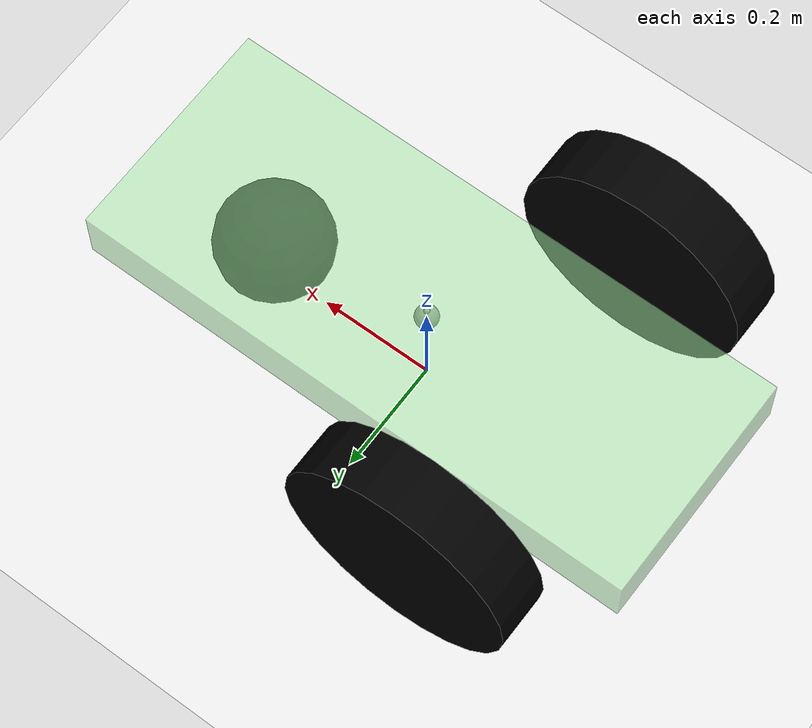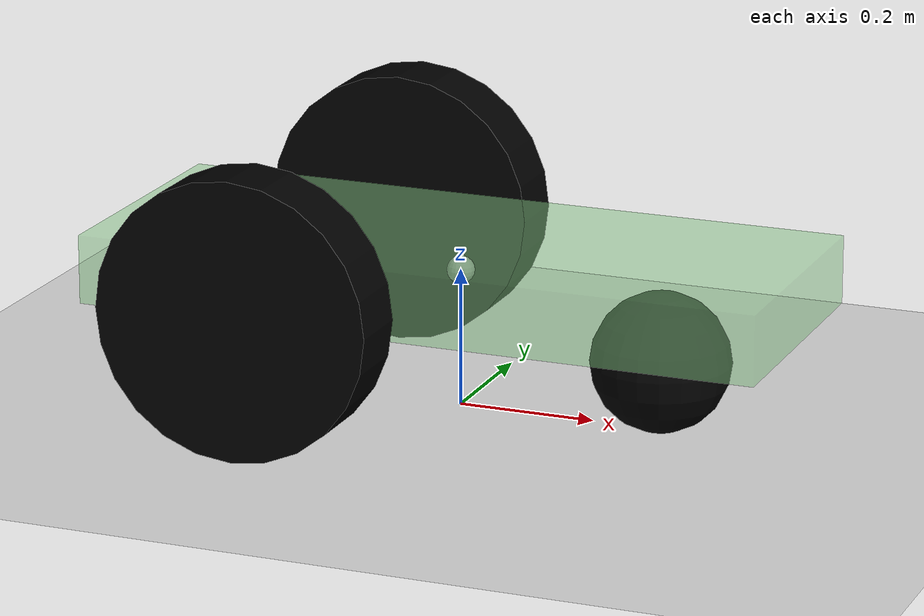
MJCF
<mujoco model="SZLbot">
	<option gravity="0 0 -9.81" />
	<worldbody>
        <light diffuse=".7 .7 .7" pos="0 0 100" dir="0 0 -1"/>
		<geom type="plane" size="100 100 0.1" rgba=".9 .9 .9 1"/>
        <!-- base_body -->
		<body name = "base_body" pos="0 0 0.2" euler='0 0 0'>
			<joint type="free"/>
			<geom type="box" size="0.5 0.2 0.05" rgba="0.6 0.9 0.6 0.5"/>
			<inertial mass="10" fullinertia="1.166 0.9167 0.4167 0 0 0" pos="0 0 0" />
			<site name="center" pos = "0 0 0" size="0.02" />
            <!-- Left_link -->
			<body name="left_link" pos="-0.2 0.3 0" euler='90 0 0'>
				<joint name = "left_wheel" type="hinge" axis="0 0 -1" damping="0.0005"/>
				<geom type="cylinder" size=".2 0.05" rgba="0 0 0 1"/>
				<inertial mass="2" fullinertia="0.02167 0.02167 0.04 0 0 0" pos="0 0 0" />
			</body>
            <!-- Right_link -->
			<body name="right_link" pos="-0.2 -0.3 0" euler='90 0 0'>
				<joint name = "right_wheel" type="hinge" axis="0 0 -1" damping="0.0005" />
				<geom type="cylinder" size=".2 0.05" rgba="0 0 0 1"/>
				<inertial mass="2" fullinertia="0.02167 0.02167 0.04 0 0 0" pos="0 0 0" />
			</body>
            <!-- Caster_link -->
            <body name="caster_link" pos="0.3 0 -0.1" euler='0 0 0'>
				<geom type="sphere"  size="0.1" rgba="0 0 0 1"/>
				<inertial mass="2" fullinertia="0.008 0.008 0.008 0 0 0" pos="0 0 0" />
			</body>
            <!-- IMU_link -->
            <body name="imu_link" pos="0 0 0.02">
                <geom name="imu_link_geom" type="box" size="0.02 0.02 0.02" pos="0 0 0" rgba="0.0 0.0 0.0 0.5"/>
                <site name="imu_site" pos="0 0 0" />
            </body>
		</body>
	</worldbody>

    <sensor>
        <!-- Accelerometer -->
        <accelerometer name="imu_accelerometer" site="imu_site" noise="0.6"/>
        <!-- Gyro -->
        <gyro name="imu_gyro" site="imu_site"/>
    </sensor>

	<actuator>
		<motor name="left_velocity_servo" joint="left_wheel" ctrlrange="-10 10" ctrllimited="true"/>
		<motor name="right_velocity_servo" joint="right_wheel"  ctrlrange="-10 10" ctrllimited="true"/>
	</actuator>
</mujoco>
